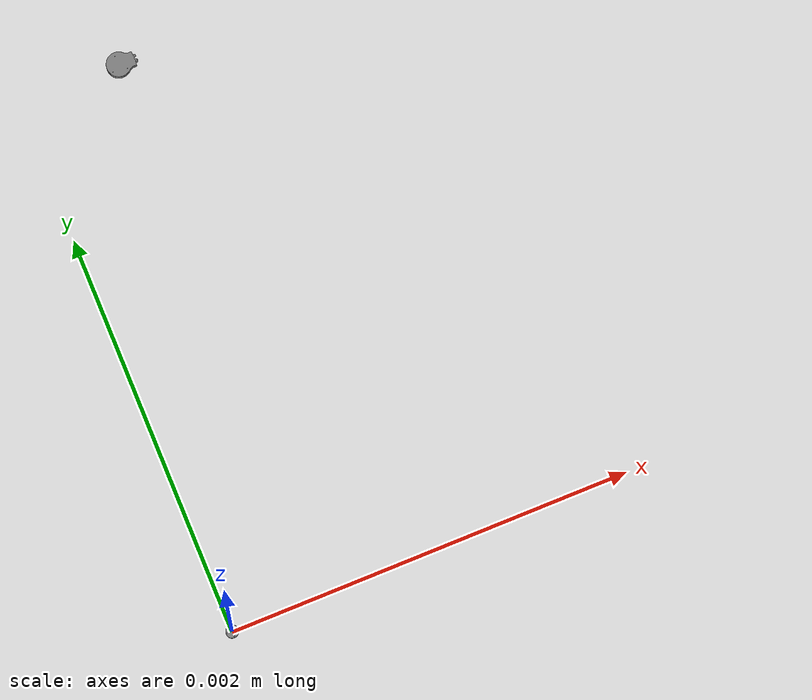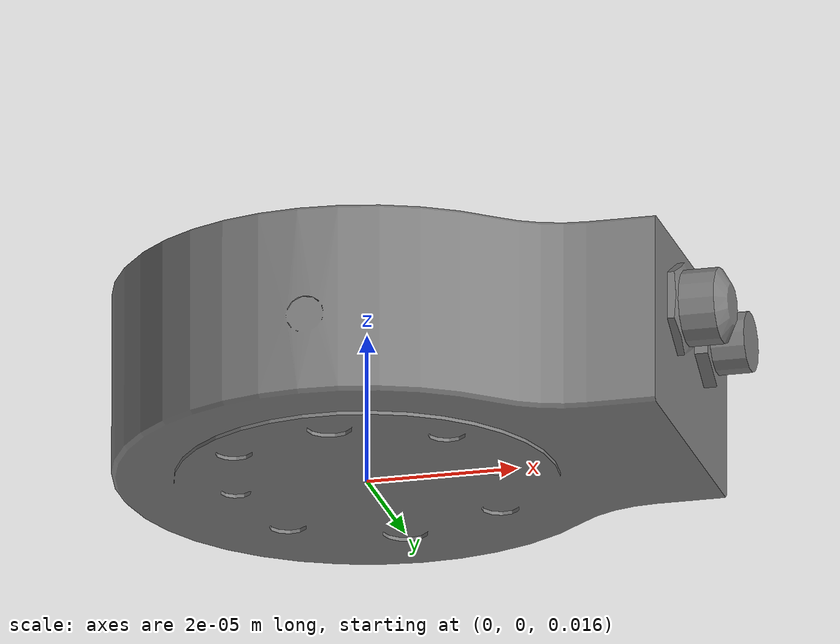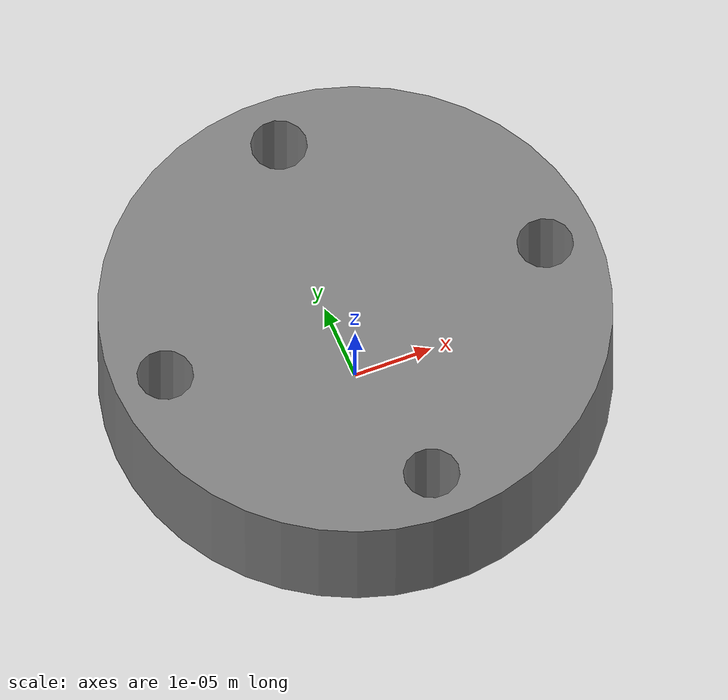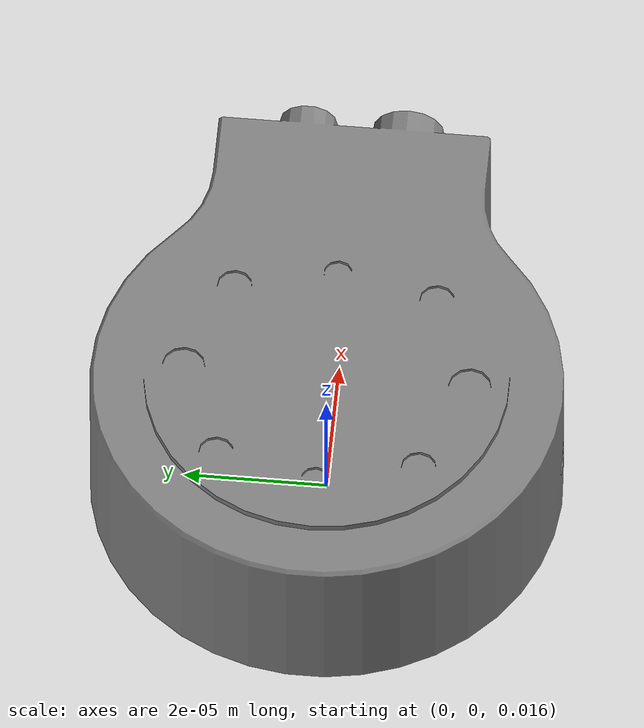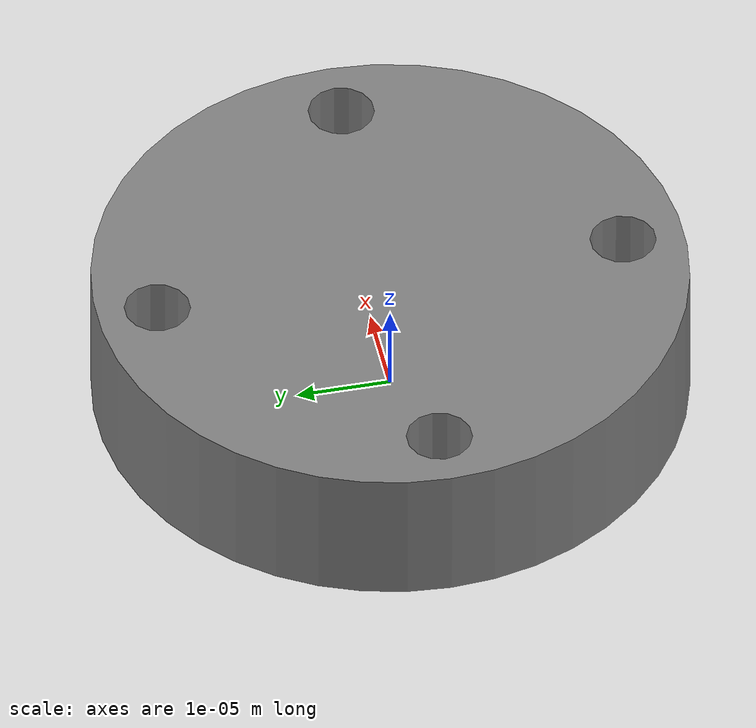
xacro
<?xml version="1.0"?>
<robot xmlns:xacro="http://www.ros.org/wiki/xacro" name="kms_40">

  <!-- Define Grey material -->
  <material name="Grey">
    <color rgba="0.5 0.5 0.5 1.0"/>
  </material>

  <!-- Define the world link -->
  <link name="world"/>

  <xacro:macro name="kms_40_xacro" params="prefix parent *origin">

    <!-- Joint connecting the parent to our frame_in -->
    <joint name="${prefix}adapter_iso50_kms40_joint" type="fixed">
      <xacro:insert_block name="origin"/>
      <parent link="${parent}"/>
      <child link="${prefix}adapter_iso50_kms40_frame_in"/>
    </joint>

    <!-- link for the adapter plate -->
    <link name="${prefix}adapter_iso50_kms40_frame_in">
      <visual>
        <origin rpy="0 0 0" xyz="0 0 0"/>
        <geometry>
          <mesh filename="package://iai_kms_40_description/meshes/adapter_plate_iso50_kms40_weiss.stl"
                scale="0.001 0.001 0.001"/>
        </geometry>
        <material name="Grey"/>
      </visual>
      <collision>
        <origin rpy="0 0 0" xyz="0 0 0"/>
        <geometry>
          <mesh filename="package://iai_kms_40_description/meshes/adapter_plate_iso50_kms40_weiss.stl"
                scale="0.001 0.001 0.001"/>
        </geometry>
        <material name="Grey"/>
      </collision>
    </link>

    <!-- Empty link just to get the frame out -->
    <link name="${prefix}adapter_iso50_kms40_frame_out"/>

    <!-- joint positioning the frame_out -->
    <joint name="${prefix}adapter_iso50_kms40_trans_frame_out" type="fixed">
      <origin xyz="0 0 0.016" rpy="0 0 0" />
      <parent link="${prefix}adapter_iso50_kms40_frame_in" />
      <child link="${prefix}adapter_iso50_kms40_frame_out" />
    </joint>

    <!-- Now joint connecting the actual kms40 sensor -->
    <joint name="${prefix}kms40_joint" type="fixed">
      <origin xyz="0 0 0" rpy="0 0 0" />
      <parent link="${prefix}adapter_iso50_kms40_frame_out"/>
      <child link="${prefix}kms40_frame_in"/>
    </joint>

    <!-- Link for the kms40 sensor-->
    <link name="${prefix}kms40_frame_in">
      <visual>
        <origin rpy="0 0 0" xyz="0 0 0"/>
        <geometry>
          <mesh filename="package://iai_kms_40_description/meshes/kms40_simple.stl"
                scale="0.001 0.001 0.001"/>
        </geometry>
        <material name="Grey"/>
      </visual>
      <collision>
        <origin rpy="0 0 0" xyz="0 0 0"/>
        <geometry>
          <mesh filename="package://iai_kms_40_description/meshes/kms40_simple.stl"
                scale="0.001 0.001 0.001"/>
        </geometry>
        <material name="Grey"/>
      </collision>
    </link>

    <!-- Empty link just to get the frame out -->
    <link name="${prefix}kms40_frame_out"/>

    <!-- joint positioning the frame_out -->
    <joint name="${prefix}kms40_trans_frame_out" type="fixed">
      <origin xyz="0 0 0.027" rpy="0 0 0" />
      <parent link="${prefix}kms40_frame_in" />
      <child link="${prefix}kms40_frame_out" />
    </joint>

  </xacro:macro>

  <!-- Instantiate the macro with the required origin -->
  <xacro:kms_40_xacro prefix="" parent="world">
    <origin xyz="0 0 0" rpy="0 0 0"/>
  </xacro:kms_40_xacro>

</robot>
